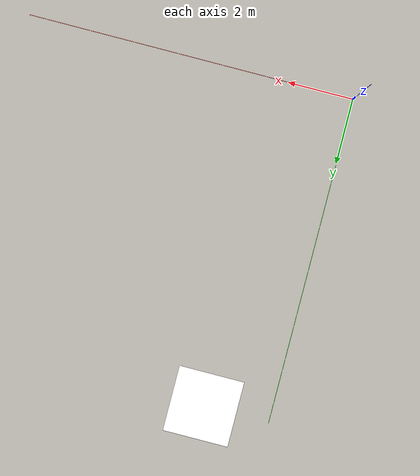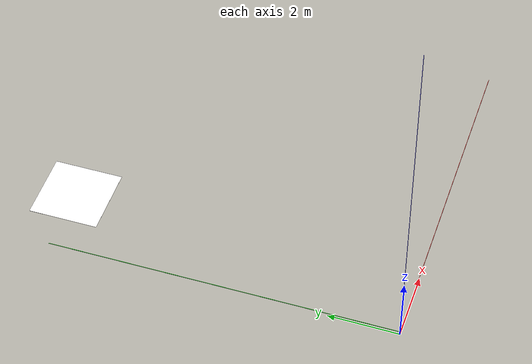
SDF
<sdf version="1.9">
 <world name="iris_runway">
  <physics name="1ms" type="ignore">
   <max_step_size>0.001</max_step_size>
   <real_time_factor>1.0</real_time_factor>
  </physics>
  <plugin filename="gz-sim-physics-system" name="gz::sim::systems::Physics"/>
  <plugin filename="gz-sim-sensors-system" name="gz::sim::systems::Sensors">
   <render_engine>ogre2</render_engine>
  </plugin>
  <plugin filename="gz-sim-user-commands-system" name="gz::sim::systems::UserCommands"/>
  <plugin filename="gz-sim-scene-broadcaster-system" name="gz::sim::systems::SceneBroadcaster"/>
  <plugin filename="gz-sim-imu-system" name="gz::sim::systems::Imu"/>
  <plugin filename="gz-sim-navsat-system" name="gz::sim::systems::NavSat"/>
  <scene><ambient>1.0 1.0 1.0</ambient><background>0.8 0.8 0.8</background></scene>
  <spherical_coordinates>
   <latitude_deg>-35.363262</latitude_deg>
   <longitude_deg>149.165237</longitude_deg>
   <elevation>584</elevation>
   <heading_deg>0</heading_deg>
   <surface_model>EARTH_WGS84</surface_model>
  </spherical_coordinates>
  <light type="directional" name="sun">
   <pose>0 0 10 0 0 0</pose>
   <diffuse>0.8 0.8 0.8 1</diffuse>
   <specular>0.8 0.8 0.8 1</specular>
   <attenuation>
    <range>1000</range>
    <constant>0.9</constant>
    <linear>0.01</linear>
    <quadratic>0.001</quadratic>
   </attenuation>
   <direction>-0.5 0.1 -0.9</direction>
  </light>
  <model name="axes">
   <static>1</static>
   <link name="link">
    <visual name="r">
     <cast_shadows>0</cast_shadows>
     <pose>5 0 0.1 0 0 0</pose>
     <geometry><box><size>10 0.01 0.01</size></box></geometry>
     <material>
      <ambient>1 0 0 0.8</ambient>
      <diffuse>1 0 0 0.8</diffuse>
      <emissive>1 0 0 0.8</emissive>
      <specular>0.5 0.5 0.5 0.8</specular>
     </material>
    </visual>
    <visual name="g">
     <cast_shadows>0</cast_shadows>
     <pose>0 5 0.1 0 0 0</pose>
     <geometry><box><size>0.01 10 0.01</size></box></geometry>
     <material>
      <ambient>0 1 0 0.8</ambient>
      <diffuse>0 1 0 0.8</diffuse>
      <emissive>0 1 0 0.8</emissive>
      <specular>0.5 0.5 0.5 0.8</specular>
     </material>
    </visual>
    <visual name="b">
     <cast_shadows>0</cast_shadows>
     <pose>0 0 5.1 0 0 0</pose>
     <geometry><box><size>0.01 0.01 10</size></box></geometry>
     <material>
      <ambient>0 0 1 0.8</ambient>
      <diffuse>0 0 1 0.8</diffuse>
      <emissive>0 0 1 0.8</emissive>
      <specular>0.5 0.5 0.5 0.8</specular>
     </material>
    </visual>
    <sensor name="navsat_sensor" type="navsat"><always_on>1</always_on><update_rate>1</update_rate></sensor>
   </link>
  </model>
  <include><name>qr_target</name><uri>model://qr_target</uri><pose>2 10 0.02 0 0 0</pose></include>
 </world>
</sdf>

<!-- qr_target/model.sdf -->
<sdf version="1.9">
  <model name="qr_target">
    <static>true</static>

    <link name="link">

      <visual name="qr_visual">
        <pose>0 0 0.01 0 0 0</pose>

        <geometry>
          <plane>
            <normal>0 0 1</normal>
            <size>2 2</size>
          </plane>
        </geometry>

        <material>
          <diffuse>1 1 1 1</diffuse>
          <pbr>
            <metal>
              <albedo_map>model://qr_target/materials/textures/qr.png</albedo_map>
              <metalness>0</metalness>
              <roughness>0.9</roughness>
            </metal>
          </pbr>
        </material>

        <cast_shadows>false</cast_shadows>
      </visual>

    </link>
  </model>
</sdf>
